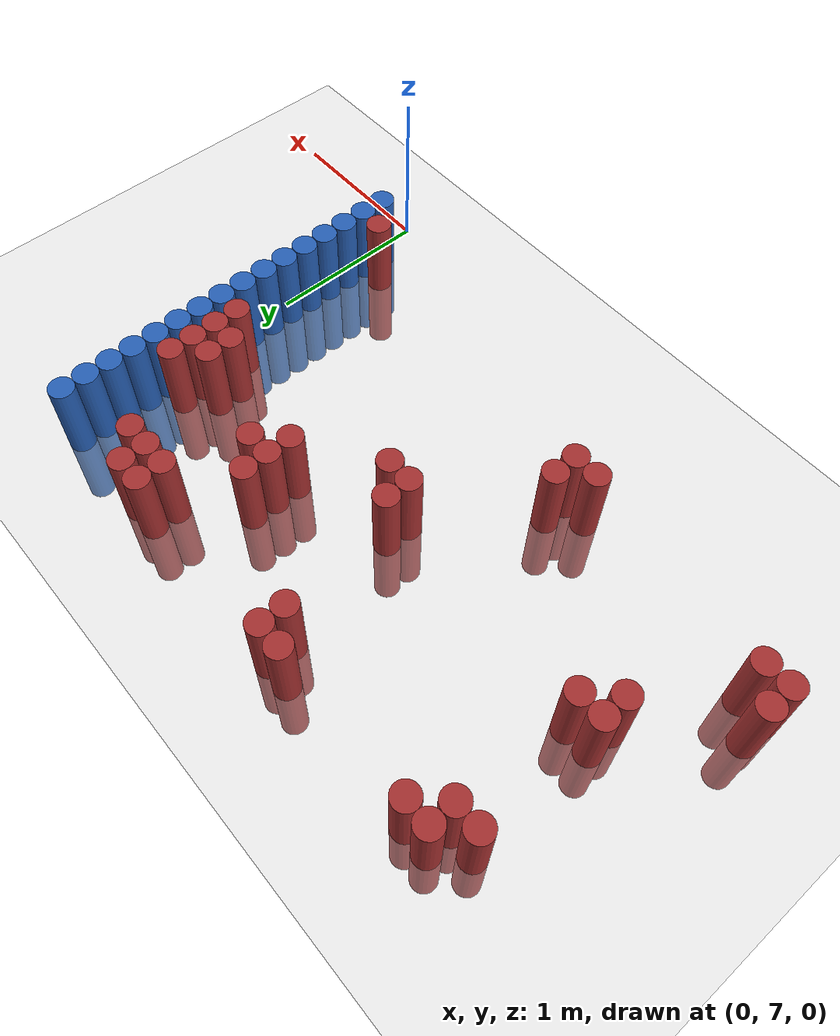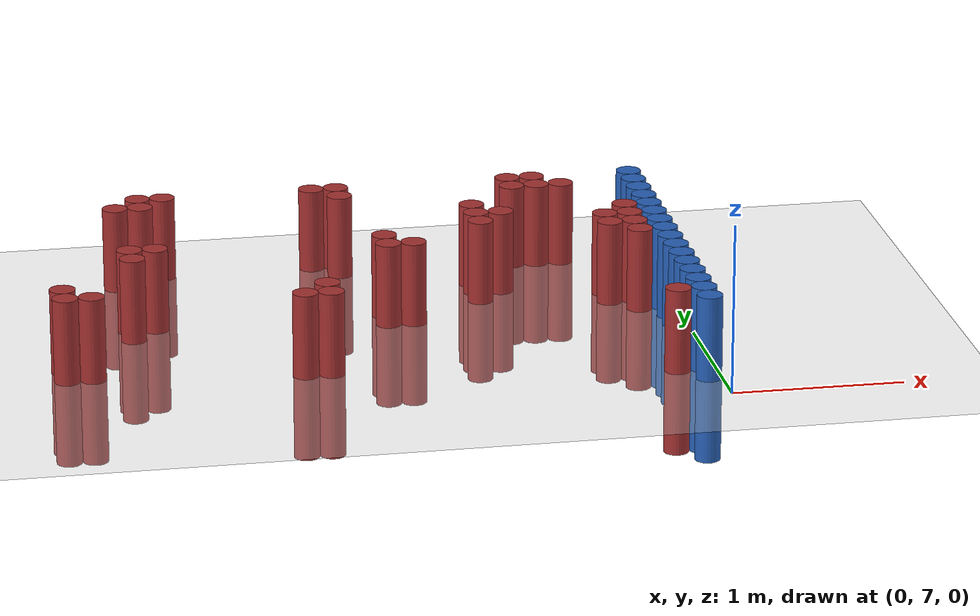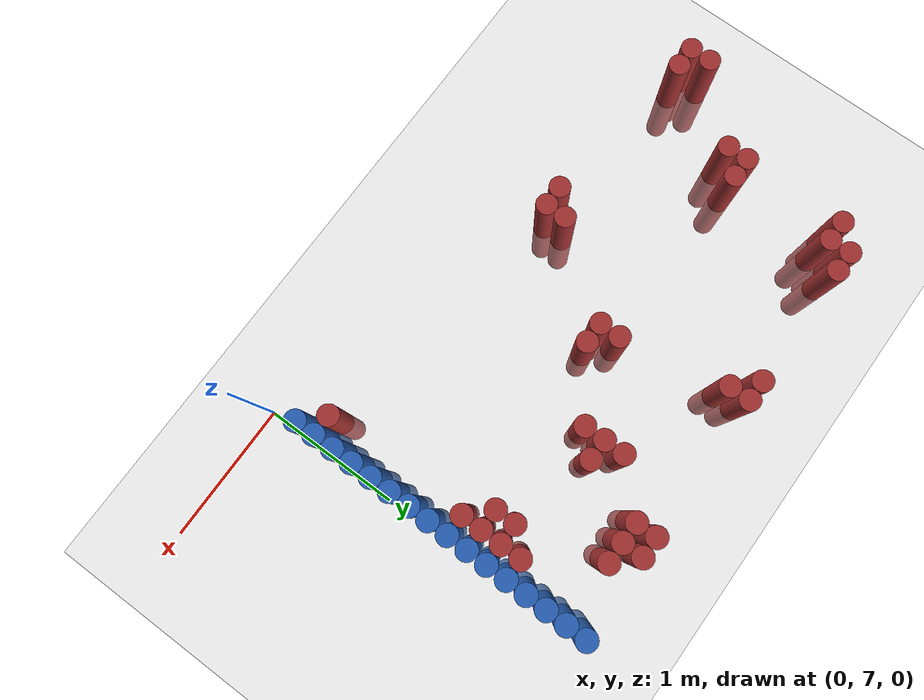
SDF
<sdf version="1.6">
 <world name="default">
  <model name="ground_plane">
   <static>1</static>
   <link name="link">
    <collision name="collision">
     <geometry><plane><normal>0 0 1</normal><size>100 100</size></plane></geometry>
     <surface><friction><ode><mu>100</mu><mu2>50</mu2></ode></friction></surface>
    </collision>
    <visual name="visual">
     <cast_shadows>0</cast_shadows>
     <geometry><plane><normal>0 0 1</normal><size>100 100</size></plane></geometry>
     <material>
      <script><uri>file://media/materials/scripts/gazebo.material</uri><name>Gazebo/Grey</name></script>
     </material>
    </visual>
   </link>
  </model>
  <model name="unit_cylinder_149">
   <static>1</static>
   <pose>-3.675000 7.875000 0.000000 0.000000 0.000000 0.000000</pose>
   <link name="link">
    <inertial>
     <mass>1</mass>
     <inertia><ixx>0.145833</ixx><ixy>0</ixy><ixz>0</ixz><iyy>0.145833</iyy><iyz>0</iyz><izz>0.125</izz></inertia>
    </inertial>
    <collision name="collision">
     <geometry><cylinder><radius>0.075000</radius><length>1</length></cylinder></geometry>
    </collision>
    <visual name="visual">
     <geometry><cylinder><radius>0.075000</radius><length>1</length></cylinder></geometry>
     <material>
      <ambient>0.648000 0.192000 0.192000 1</ambient>
      <diffuse>0.648000 0.192000 0.192000 1</diffuse>
     </material>
     <material>
      <script><name>Gazebo/Grey</name><uri>file://media/materials/scripts/gazebo.material</uri></script>
     </material>
    </visual>
   </link>
  </model>
  <model name="unit_cylinder_150">
   <static>1</static>
   <pose>-3.675000 8.025000 0.000000 0.000000 0.000000 0.000000</pose>
   <link name="link">
    <inertial>
     <mass>1</mass>
     <inertia><ixx>0.145833</ixx><ixy>0</ixy><ixz>0</ixz><iyy>0.145833</iyy><iyz>0</iyz><izz>0.125</izz></inertia>
    </inertial>
    <collision name="collision">
     <geometry><cylinder><radius>0.075000</radius><length>1</length></cylinder></geometry>
    </collision>
    <visual name="visual">
     <geometry><cylinder><radius>0.075000</radius><length>1</length></cylinder></geometry>
     <material>
      <ambient>0.648000 0.192000 0.192000 1</ambient>
      <diffuse>0.648000 0.192000 0.192000 1</diffuse>
     </material>
     <material>
      <script><name>Gazebo/Grey</name><uri>file://media/materials/scripts/gazebo.material</uri></script>
     </material>
    </visual>
   </link>
  </model>
  <model name="unit_cylinder_152">
   <static>1</static>
   <pose>-3.525000 7.875000 0.000000 0.000000 0.000000 0.000000</pose>
   <link name="link">
    <inertial>
     <mass>1</mass>
     <inertia><ixx>0.145833</ixx><ixy>0</ixy><ixz>0</ixz><iyy>0.145833</iyy><iyz>0</iyz><izz>0.125</izz></inertia>
    </inertial>
    <collision name="collision">
     <geometry><cylinder><radius>0.075000</radius><length>1</length></cylinder></geometry>
    </collision>
    <visual name="visual">
     <geometry><cylinder><radius>0.075000</radius><length>1</length></cylinder></geometry>
     <material>
      <ambient>0.648000 0.192000 0.192000 1</ambient>
      <diffuse>0.648000 0.192000 0.192000 1</diffuse>
     </material>
     <material>
      <script><name>Gazebo/Grey</name><uri>file://media/materials/scripts/gazebo.material</uri></script>
     </material>
    </visual>
   </link>
  </model>
  <model name="unit_cylinder_155">
   <static>1</static>
   <pose>-3.225000 8.475000 0.000000 0.000000 0.000000 0.000000</pose>
   <link name="link">
    <inertial>
     <mass>1</mass>
     <inertia><ixx>0.145833</ixx><ixy>0</ixy><ixz>0</ixz><iyy>0.145833</iyy><iyz>0</iyz><izz>0.125</izz></inertia>
    </inertial>
    <collision name="collision">
     <geometry><cylinder><radius>0.075000</radius><length>1</length></cylinder></geometry>
    </collision>
    <visual name="visual">
     <geometry><cylinder><radius>0.075000</radius><length>1</length></cylinder></geometry>
     <material>
      <ambient>0.648000 0.192000 0.192000 1</ambient>
      <diffuse>0.648000 0.192000 0.192000 1</diffuse>
     </material>
     <material>
      <script><name>Gazebo/Grey</name><uri>file://media/materials/scripts/gazebo.material</uri></script>
     </material>
    </visual>
   </link>
  </model>
  <model name="unit_cylinder_156">
   <static>1</static>
   <pose>-3.225000 8.625000 0.000000 0.000000 0.000000 0.000000</pose>
   <link name="link">
    <inertial>
     <mass>1</mass>
     <inertia><ixx>0.145833</ixx><ixy>0</ixy><ixz>0</ixz><iyy>0.145833</iyy><iyz>0</iyz><izz>0.125</izz></inertia>
    </inertial>
    <collision name="collision">
     <geometry><cylinder><radius>0.075000</radius><length>1</length></cylinder></geometry>
    </collision>
    <visual name="visual">
     <geometry><cylinder><radius>0.075000</radius><length>1</length></cylinder></geometry>
     <material>
      <ambient>0.648000 0.192000 0.192000 1</ambient>
      <diffuse>0.648000 0.192000 0.192000 1</diffuse>
     </material>
     <material>
      <script><name>Gazebo/Grey</name><uri>file://media/materials/scripts/gazebo.material</uri></script>
     </material>
    </visual>
   </link>
  </model>
  <model name="unit_cylinder_157">
   <static>1</static>
   <pose>-3.225000 9.375000 0.000000 0.000000 0.000000 0.000000</pose>
   <link name="link">
    <inertial>
     <mass>1</mass>
     <inertia><ixx>0.145833</ixx><ixy>0</ixy><ixz>0</ixz><iyy>0.145833</iyy><iyz>0</iyz><izz>0.125</izz></inertia>
    </inertial>
    <collision name="collision">
     <geometry><cylinder><radius>0.075000</radius><length>1</length></cylinder></geometry>
    </collision>
    <visual name="visual">
     <geometry><cylinder><radius>0.075000</radius><length>1</length></cylinder></geometry>
     <material>
      <ambient>0.648000 0.192000 0.192000 1</ambient>
      <diffuse>0.648000 0.192000 0.192000 1</diffuse>
     </material>
     <material>
      <script><name>Gazebo/Grey</name><uri>file://media/materials/scripts/gazebo.material</uri></script>
     </material>
    </visual>
   </link>
  </model>
  <model name="unit_cylinder_158">
   <static>1</static>
   <pose>-3.075000 8.625000 0.000000 0.000000 0.000000 0.000000</pose>
   <link name="link">
    <inertial>
     <mass>1</mass>
     <inertia><ixx>0.145833</ixx><ixy>0</ixy><ixz>0</ixz><iyy>0.145833</iyy><iyz>0</iyz><izz>0.125</izz></inertia>
    </inertial>
    <collision name="collision">
     <geometry><cylinder><radius>0.075000</radius><length>1</length></cylinder></geometry>
    </collision>
    <visual name="visual">
     <geometry><cylinder><radius>0.075000</radius><length>1</length></cylinder></geometry>
     <material>
      <ambient>0.648000 0.192000 0.192000 1</ambient>
      <diffuse>0.648000 0.192000 0.192000 1</diffuse>
     </material>
     <material>
      <script><name>Gazebo/Grey</name><uri>file://media/materials/scripts/gazebo.material</uri></script>
     </material>
    </visual>
   </link>
  </model>
  <model name="unit_cylinder_159">
   <static>1</static>
   <pose>-3.075000 9.375000 0.000000 0.000000 0.000000 0.000000</pose>
   <link name="link">
    <inertial>
     <mass>1</mass>
     <inertia><ixx>0.145833</ixx><ixy>0</ixy><ixz>0</ixz><iyy>0.145833</iyy><iyz>0</iyz><izz>0.125</izz></inertia>
    </inertial>
    <collision name="collision">
     <geometry><cylinder><radius>0.075000</radius><length>1</length></cylinder></geometry>
    </collision>
    <visual name="visual">
     <geometry><cylinder><radius>0.075000</radius><length>1</length></cylinder></geometry>
     <material>
      <ambient>0.648000 0.192000 0.192000 1</ambient>
      <diffuse>0.648000 0.192000 0.192000 1</diffuse>
     </material>
     <material>
      <script><name>Gazebo/Grey</name><uri>file://media/materials/scripts/gazebo.material</uri></script>
     </material>
    </visual>
   </link>
  </model>
  <model name="unit_cylinder_160">
   <static>1</static>
   <pose>-3.075000 9.525000 0.000000 0.000000 0.000000 0.000000</pose>
   <link name="link">
    <inertial>
     <mass>1</mass>
     <inertia><ixx>0.145833</ixx><ixy>0</ixy><ixz>0</ixz><iyy>0.145833</iyy><iyz>0</iyz><izz>0.125</izz></inertia>
    </inertial>
    <collision name="collision">
     <geometry><cylinder><radius>0.075000</radius><length>1</length></cylinder></geometry>
    </collision>
    <visual name="visual">
     <geometry><cylinder><radius>0.075000</radius><length>1</length></cylinder></geometry>
     <material>
      <ambient>0.648000 0.192000 0.192000 1</ambient>
      <diffuse>0.648000 0.192000 0.192000 1</diffuse>
     </material>
     <material>
      <script><name>Gazebo/Grey</name><uri>file://media/materials/scripts/gazebo.material</uri></script>
     </material>
    </visual>
   </link>
  </model>
  <model name="unit_cylinder_161">
   <static>1</static>
   <pose>-2.925000 9.525000 0.000000 0.000000 0.000000 0.000000</pose>
   <link name="link">
    <inertial>
     <mass>1</mass>
     <inertia><ixx>0.145833</ixx><ixy>0</ixy><ixz>0</ixz><iyy>0.145833</iyy><iyz>0</iyz><izz>0.125</izz></inertia>
    </inertial>
    <collision name="collision">
     <geometry><cylinder><radius>0.075000</radius><length>1</length></cylinder></geometry>
    </collision>
    <visual name="visual">
     <geometry><cylinder><radius>0.075000</radius><length>1</length></cylinder></geometry>
     <material>
      <ambient>0.648000 0.192000 0.192000 1</ambient>
      <diffuse>0.648000 0.192000 0.192000 1</diffuse>
     </material>
     <material>
      <script><name>Gazebo/Grey</name><uri>file://media/materials/scripts/gazebo.material</uri></script>
     </material>
    </visual>
   </link>
  </model>
  <model name="unit_cylinder_170">
   <static>1</static>
   <pose>-2.325000 7.725000 0.000000 0.000000 0.000000 0.000000</pose>
   <link name="link">
    <inertial>
     <mass>1</mass>
     <inertia><ixx>0.145833</ixx><ixy>0</ixy><ixz>0</ixz><iyy>0.145833</iyy><iyz>0</iyz><izz>0.125</izz></inertia>
    </inertial>
    <collision name="collision">
     <geometry><cylinder><radius>0.075000</radius><length>1</length></cylinder></geometry>
    </collision>
    <visual name="visual">
     <geometry><cylinder><radius>0.075000</radius><length>1</length></cylinder></geometry>
     <material>
      <ambient>0.648000 0.192000 0.192000 1</ambient>
      <diffuse>0.648000 0.192000 0.192000 1</diffuse>
     </material>
     <material>
      <script><name>Gazebo/Grey</name><uri>file://media/materials/scripts/gazebo.material</uri></script>
     </material>
    </visual>
   </link>
  </model>
  <model name="unit_cylinder_171">
   <static>1</static>
   <pose>-2.175000 7.725000 0.000000 0.000000 0.000000 0.000000</pose>
   <link name="link">
    <inertial>
     <mass>1</mass>
     <inertia><ixx>0.145833</ixx><ixy>0</ixy><ixz>0</ixz><iyy>0.145833</iyy><iyz>0</iyz><izz>0.125</izz></inertia>
    </inertial>
    <collision name="collision">
     <geometry><cylinder><radius>0.075000</radius><length>1</length></cylinder></geometry>
    </collision>
    <visual name="visual">
     <geometry><cylinder><radius>0.075000</radius><length>1</length></cylinder></geometry>
     <material>
      <ambient>0.648000 0.192000 0.192000 1</ambient>
      <diffuse>0.648000 0.192000 0.192000 1</diffuse>
     </material>
     <material>
      <script><name>Gazebo/Grey</name><uri>file://media/materials/scripts/gazebo.material</uri></script>
     </material>
    </visual>
   </link>
  </model>
  <model name="unit_cylinder_172">
   <static>1</static>
   <pose>-2.175000 7.875000 0.000000 0.000000 0.000000 0.000000</pose>
   <link name="link">
    <inertial>
     <mass>1</mass>
     <inertia><ixx>0.145833</ixx><ixy>0</ixy><ixz>0</ixz><iyy>0.145833</iyy><iyz>0</iyz><izz>0.125</izz></inertia>
    </inertial>
    <collision name="collision">
     <geometry><cylinder><radius>0.075000</radius><length>1</length></cylinder></geometry>
    </collision>
    <visual name="visual">
     <geometry><cylinder><radius>0.075000</radius><length>1</length></cylinder></geometry>
     <material>
      <ambient>0.648000 0.192000 0.192000 1</ambient>
      <diffuse>0.648000 0.192000 0.192000 1</diffuse>
     </material>
     <material>
      <script><name>Gazebo/Grey</name><uri>file://media/materials/scripts/gazebo.material</uri></script>
     </material>
    </visual>
   </link>
  </model>
  <model name="unit_cylinder_173">
   <static>1</static>
   <pose>-2.025000 9.525000 0.000000 0.000000 0.000000 0.000000</pose>
   <link name="link">
    <inertial>
     <mass>1</mass>
     <inertia><ixx>0.145833</ixx><ixy>0</ixy><ixz>0</ixz><iyy>0.145833</iyy><iyz>0</iyz><izz>0.125</izz></inertia>
    </inertial>
    <collision name="collision">
     <geometry><cylinder><radius>0.075000</radius><length>1</length></cylinder></geometry>
    </collision>
    <visual name="visual">
     <geometry><cylinder><radius>0.075000</radius><length>1</length></cylinder></geometry>
     <material>
      <ambient>0.648000 0.192000 0.192000 1</ambient>
      <diffuse>0.648000 0.192000 0.192000 1</diffuse>
     </material>
     <material>
      <script><name>Gazebo/Grey</name><uri>file://media/materials/scripts/gazebo.material</uri></script>
     </material>
    </visual>
   </link>
  </model>
  <model name="unit_cylinder_175">
   <static>1</static>
   <pose>-1.875000 9.375000 0.000000 0.000000 0.000000 0.000000</pose>
   <link name="link">
    <inertial>
     <mass>1</mass>
     <inertia><ixx>0.145833</ixx><ixy>0</ixy><ixz>0</ixz><iyy>0.145833</iyy><iyz>0</iyz><izz>0.125</izz></inertia>
    </inertial>
    <collision name="collision">
     <geometry><cylinder><radius>0.075000</radius><length>1</length></cylinder></geometry>
    </collision>
    <visual name="visual">
     <geometry><cylinder><radius>0.075000</radius><length>1</length></cylinder></geometry>
     <material>
      <ambient>0.648000 0.192000 0.192000 1</ambient>
      <diffuse>0.648000 0.192000 0.192000 1</diffuse>
     </material>
     <material>
      <script><name>Gazebo/Grey</name><uri>file://media/materials/scripts/gazebo.material</uri></script>
     </material>
    </visual>
   </link>
  </model>
  <model name="unit_cylinder_176">
   <static>1</static>
   <pose>-1.875000 9.525000 0.000000 0.000000 0.000000 0.000000</pose>
   <link name="link">
    <inertial>
     <mass>1</mass>
     <inertia><ixx>0.145833</ixx><ixy>0</ixy><ixz>0</ixz><iyy>0.145833</iyy><iyz>0</iyz><izz>0.125</izz></inertia>
    </inertial>
    <collision name="collision">
     <geometry><cylinder><radius>0.075000</radius><length>1</length></cylinder></geometry>
    </collision>
    <visual name="visual">
     <geometry><cylinder><radius>0.075000</radius><length>1</length></cylinder></geometry>
     <material>
      <ambient>0.648000 0.192000 0.192000 1</ambient>
      <diffuse>0.648000 0.192000 0.192000 1</diffuse>
     </material>
     <material>
      <script><name>Gazebo/Grey</name><uri>file://media/materials/scripts/gazebo.material</uri></script>
     </material>
    </visual>
   </link>
  </model>
  <model name="unit_cylinder_180">
   <static>1</static>
   <pose>-1.725000 8.475000 0.000000 0.000000 0.000000 0.000000</pose>
   <link name="link">
    <inertial>
     <mass>1</mass>
     <inertia><ixx>0.145833</ixx><ixy>0</ixy><ixz>0</ixz><iyy>0.145833</iyy><iyz>0</iyz><izz>0.125</izz></inertia>
    </inertial>
    <collision name="collision">
     <geometry><cylinder><radius>0.075000</radius><length>1</length></cylinder></geometry>
    </collision>
    <visual name="visual">
     <geometry><cylinder><radius>0.075000</radius><length>1</length></cylinder></geometry>
     <material>
      <ambient>0.648000 0.192000 0.192000 1</ambient>
      <diffuse>0.648000 0.192000 0.192000 1</diffuse>
     </material>
     <material>
      <script><name>Gazebo/Grey</name><uri>file://media/materials/scripts/gazebo.material</uri></script>
     </material>
    </visual>
   </link>
  </model>
  <model name="unit_cylinder_181">
   <static>1</static>
   <pose>-1.725000 8.625000 0.000000 0.000000 0.000000 0.000000</pose>
   <link name="link">
    <inertial>
     <mass>1</mass>
     <inertia><ixx>0.145833</ixx><ixy>0</ixy><ixz>0</ixz><iyy>0.145833</iyy><iyz>0</iyz><izz>0.125</izz></inertia>
    </inertial>
    <collision name="collision">
     <geometry><cylinder><radius>0.075000</radius><length>1</length></cylinder></geometry>
    </collision>
    <visual name="visual">
     <geometry><cylinder><radius>0.075000</radius><length>1</length></cylinder></geometry>
     <material>
      <ambient>0.648000 0.192000 0.192000 1</ambient>
      <diffuse>0.648000 0.192000 0.192000 1</diffuse>
     </material>
     <material>
      <script><name>Gazebo/Grey</name><uri>file://media/materials/scripts/gazebo.material</uri></script>
     </material>
    </visual>
   </link>
  </model>
  <model name="unit_cylinder_184">
   <static>1</static>
   <pose>-1.575000 8.475000 0.000000 0.000000 0.000000 0.000000</pose>
   <link name="link">
    <inertial>
     <mass>1</mass>
     <inertia><ixx>0.145833</ixx><ixy>0</ixy><ixz>0</ixz><iyy>0.145833</iyy><iyz>0</iyz><izz>0.125</izz></inertia>
    </inertial>
    <collision name="collision">
     <geometry><cylinder><radius>0.075000</radius><length>1</length></cylinder></geometry>
    </collision>
    <visual name="visual">
     <geometry><cylinder><radius>0.075000</radius><length>1</length></cylinder></geometry>
     <material>
      <ambient>0.648000 0.192000 0.192000 1</ambient>
      <diffuse>0.648000 0.192000 0.192000 1</diffuse>
     </material>
     <material>
      <script><name>Gazebo/Grey</name><uri>file://media/materials/scripts/gazebo.material</uri></script>
     </material>
    </visual>
   </link>
  </model>
  <model name="unit_cylinder_201">
   <static>1</static>
   <pose>-1.125000 8.775000 0.000000 0.000000 0.000000 0.000000</pose>
   <link name="link">
    <inertial>
     <mass>1</mass>
     <inertia><ixx>0.145833</ixx><ixy>0</ixy><ixz>0</ixz><iyy>0.145833</iyy><iyz>0</iyz><izz>0.125</izz></inertia>
    </inertial>
    <collision name="collision">
     <geometry><cylinder><radius>0.075000</radius><length>1</length></cylinder></geometry>
    </collision>
    <visual name="visual">
     <geometry><cylinder><radius>0.075000</radius><length>1</length></cylinder></geometry>
     <material>
      <ambient>0.648000 0.192000 0.192000 1</ambient>
      <diffuse>0.648000 0.192000 0.192000 1</diffuse>
     </material>
     <material>
      <script><name>Gazebo/Grey</name><uri>file://media/materials/scripts/gazebo.material</uri></script>
     </material>
    </visual>
   </link>
  </model>
  <model name="unit_cylinder_202">
   <static>1</static>
   <pose>-1.125000 8.925000 0.000000 0.000000 0.000000 0.000000</pose>
   <link name="link">
    <inertial>
     <mass>1</mass>
     <inertia><ixx>0.145833</ixx><ixy>0</ixy><ixz>0</ixz><iyy>0.145833</iyy><iyz>0</iyz><izz>0.125</izz></inertia>
    </inertial>
    <collision name="collision">
     <geometry><cylinder><radius>0.075000</radius><length>1</length></cylinder></geometry>
    </collision>
    <visual name="visual">
     <geometry><cylinder><radius>0.075000</radius><length>1</length></cylinder></geometry>
     <material>
      <ambient>0.648000 0.192000 0.192000 1</ambient>
      <diffuse>0.648000 0.192000 0.192000 1</diffuse>
     </material>
     <material>
      <script><name>Gazebo/Grey</name><uri>file://media/materials/scripts/gazebo.material</uri></script>
     </material>
    </visual>
   </link>
  </model>
  <model name="unit_cylinder_203">
   <static>1</static>
   <pose>-1.125000 9.075000 0.000000 0.000000 0.000000 0.000000</pose>
   <link name="link">
    <inertial>
     <mass>1</mass>
     <inertia><ixx>0.145833</ixx><ixy>0</ixy><ixz>0</ixz><iyy>0.145833</iyy><iyz>0</iyz><izz>0.125</izz></inertia>
    </inertial>
    <collision name="collision">
     <geometry><cylinder><radius>0.075000</radius><length>1</length></cylinder></geometry>
    </collision>
    <visual name="visual">
     <geometry><cylinder><radius>0.075000</radius><length>1</length></cylinder></geometry>
     <material>
      <ambient>0.648000 0.192000 0.192000 1</ambient>
      <diffuse>0.648000 0.192000 0.192000 1</diffuse>
     </material>
     <material>
      <script><name>Gazebo/Grey</name><uri>file://media/materials/scripts/gazebo.material</uri></script>
     </material>
    </visual>
   </link>
  </model>
  <model name="unit_cylinder_206">
   <static>1</static>
   <pose>-0.975000 8.925000 0.000000 0.000000 0.000000 0.000000</pose>
   <link name="link">
    <inertial>
     <mass>1</mass>
     <inertia><ixx>0.145833</ixx><ixy>0</ixy><ixz>0</ixz><iyy>0.145833</iyy><iyz>0</iyz><izz>0.125</izz></inertia>
    </inertial>
    <collision name="collision">
     <geometry><cylinder><radius>0.075000</radius><length>1</length></cylinder></geometry>
    </collision>
    <visual name="visual">
     <geometry><cylinder><radius>0.075000</radius><length>1</length></cylinder></geometry>
     <material>
      <ambient>0.648000 0.192000 0.192000 1</ambient>
      <diffuse>0.648000 0.192000 0.192000 1</diffuse>
     </material>
     <material>
      <script><name>Gazebo/Grey</name><uri>file://media/materials/scripts/gazebo.material</uri></script>
     </material>
    </visual>
   </link>
  </model>
  <model name="unit_cylinder_207">
   <static>1</static>
   <pose>-0.825000 9.375000 0.000000 0.000000 0.000000 0.000000</pose>
   <link name="link">
    <inertial>
     <mass>1</mass>
     <inertia><ixx>0.145833</ixx><ixy>0</ixy><ixz>0</ixz><iyy>0.145833</iyy><iyz>0</iyz><izz>0.125</izz></inertia>
    </inertial>
    <collision name="collision">
     <geometry><cylinder><radius>0.075000</radius><length>1</length></cylinder></geometry>
    </collision>
    <visual name="visual">
     <geometry><cylinder><radius>0.075000</radius><length>1</length></cylinder></geometry>
     <material>
      <ambient>0.648000 0.192000 0.192000 1</ambient>
      <diffuse>0.648000 0.192000 0.192000 1</diffuse>
     </material>
     <material>
      <script><name>Gazebo/Grey</name><uri>file://media/materials/scripts/gazebo.material</uri></script>
     </material>
    </visual>
   </link>
  </model>
  <model name="unit_cylinder_208">
   <static>1</static>
   <pose>-0.825000 9.525000 0.000000 0.000000 0.000000 0.000000</pose>
   <link name="link">
    <inertial>
     <mass>1</mass>
     <inertia><ixx>0.145833</ixx><ixy>0</ixy><ixz>0</ixz><iyy>0.145833</iyy><iyz>0</iyz><izz>0.125</izz></inertia>
    </inertial>
    <collision name="collision">
     <geometry><cylinder><radius>0.075000</radius><length>1</length></cylinder></geometry>
    </collision>
    <visual name="visual">
     <geometry><cylinder><radius>0.075000</radius><length>1</length></cylinder></geometry>
     <material>
      <ambient>0.648000 0.192000 0.192000 1</ambient>
      <diffuse>0.648000 0.192000 0.192000 1</diffuse>
     </material>
     <material>
      <script><name>Gazebo/Grey</name><uri>file://media/materials/scripts/gazebo.material</uri></script>
     </material>
    </visual>
   </link>
  </model>
  <model name="unit_cylinder_209">
   <static>1</static>
   <pose>-0.675000 9.375000 0.000000 0.000000 0.000000 0.000000</pose>
   <link name="link">
    <inertial>
     <mass>1</mass>
     <inertia><ixx>0.145833</ixx><ixy>0</ixy><ixz>0</ixz><iyy>0.145833</iyy><iyz>0</iyz><izz>0.125</izz></inertia>
    </inertial>
    <collision name="collision">
     <geometry><cylinder><radius>0.075000</radius><length>1</length></cylinder></geometry>
    </collision>
    <visual name="visual">
     <geometry><cylinder><radius>0.075000</radius><length>1</length></cylinder></geometry>
     <material>
      <ambient>0.648000 0.192000 0.192000 1</ambient>
      <diffuse>0.648000 0.192000 0.192000 1</diffuse>
     </material>
     <material>
      <script><name>Gazebo/Grey</name><uri>file://media/materials/scripts/gazebo.material</uri></script>
     </material>
    </visual>
   </link>
  </model>
  <model name="unit_cylinder_210">
   <static>1</static>
   <pose>-0.675000 9.525000 0.000000 0.000000 0.000000 0.000000</pose>
   <link name="link">
    <inertial>
     <mass>1</mass>
     <inertia><ixx>0.145833</ixx><ixy>0</ixy><ixz>0</ixz><iyy>0.145833</iyy><iyz>0</iyz><izz>0.125</izz></inertia>
    </inertial>
    <collision name="collision">
     <geometry><cylinder><radius>0.075000</radius><length>1</length></cylinder></geometry>
    </collision>
    <visual name="visual">
     <geometry><cylinder><radius>0.075000</radius><length>1</length></cylinder></geometry>
     <material>
      <ambient>0.648000 0.192000 0.192000 1</ambient>
      <diffuse>0.648000 0.192000 0.192000 1</diffuse>
     </material>
     <material>
      <script><name>Gazebo/Grey</name><uri>file://media/materials/scripts/gazebo.material</uri></script>
     </material>
    </visual>
   </link>
  </model>
  <model name="unit_cylinder_211">
   <static>1</static>
   <pose>-0.525000 9.375000 0.000000 0.000000 0.000000 0.000000</pose>
   <link name="link">
    <inertial>
     <mass>1</mass>
     <inertia><ixx>0.145833</ixx><ixy>0</ixy><ixz>0</ixz><iyy>0.145833</iyy><iyz>0</iyz><izz>0.125</izz></inertia>
    </inertial>
    <collision name="collision">
     <geometry><cylinder><radius>0.075000</radius><length>1</length></cylinder></geometry>
    </collision>
    <visual name="visual">
     <geometry><cylinder><radius>0.075000</radius><length>1</length></cylinder></geometry>
     <material>
      <ambient>0.648000 0.192000 0.192000 1</ambient>
      <diffuse>0.648000 0.192000 0.192000 1</diffuse>
     </material>
     <material>
      <script><name>Gazebo/Grey</name><uri>file://media/materials/scripts/gazebo.material</uri></script>
     </material>
    </visual>
   </link>
  </model>
  <model name="unit_cylinder_214">
   <static>1</static>
   <pose>-0.375000 8.625000 0.000000 0.000000 0.000000 0.000000</pose>
   <link name="link">
    <inertial>
     <mass>1</mass>
     <inertia><ixx>0.145833</ixx><ixy>0</ixy><ixz>0</ixz><iyy>0.145833</iyy><iyz>0</iyz><izz>0.125</izz></inertia>
    </inertial>
    <collision name="collision">
     <geometry><cylinder><radius>0.075000</radius><length>1</length></cylinder></geometry>
    </collision>
    <visual name="visual">
     <geometry><cylinder><radius>0.075000</radius><length>1</length></cylinder></geometry>
     <material>
      <ambient>0.648000 0.192000 0.192000 1</ambient>
      <diffuse>0.648000 0.192000 0.192000 1</diffuse>
     </material>
     <material>
      <script><name>Gazebo/Grey</name><uri>file://media/materials/scripts/gazebo.material</uri></script>
     </material>
    </visual>
   </link>
  </model>
  <model name="unit_cylinder_215">
   <static>1</static>
   <pose>-0.375000 8.775000 0.000000 0.000000 0.000000 0.000000</pose>
   <link name="link">
    <inertial>
     <mass>1</mass>
     <inertia><ixx>0.145833</ixx><ixy>0</ixy><ixz>0</ixz><iyy>0.145833</iyy><iyz>0</iyz><izz>0.125</izz></inertia>
    </inertial>
    <collision name="collision">
     <geometry><cylinder><radius>0.075000</radius><length>1</length></cylinder></geometry>
    </collision>
    <visual name="visual">
     <geometry><cylinder><radius>0.075000</radius><length>1</length></cylinder></geometry>
     <material>
      <ambient>0.648000 0.192000 0.192000 1</ambient>
      <diffuse>0.648000 0.192000 0.192000 1</diffuse>
     </material>
     <material>
      <script><name>Gazebo/Grey</name><uri>file://media/materials/scripts/gazebo.material</uri></script>
     </material>
    </visual>
   </link>
  </model>
  <model name="unit_cylinder_221">
   <static>1</static>
   <pose>-0.225000 7.425000 0.000000 0.000000 0.000000 0.000000</pose>
   <link name="link">
    <inertial>
     <mass>1</mass>
     <inertia><ixx>0.145833</ixx><ixy>0</ixy><ixz>0</ixz><iyy>0.145833</iyy><iyz>0</iyz><izz>0.125</izz></inertia>
    </inertial>
    <collision name="collision">
     <geometry><cylinder><radius>0.075000</radius><length>1</length></cylinder></geometry>
    </collision>
    <visual name="visual">
     <geometry><cylinder><radius>0.075000</radius><length>1</length></cylinder></geometry>
     <material>
      <ambient>0.648000 0.192000 0.192000 1</ambient>
      <diffuse>0.648000 0.192000 0.192000 1</diffuse>
     </material>
     <material>
      <script><name>Gazebo/Grey</name><uri>file://media/materials/scripts/gazebo.material</uri></script>
     </material>
    </visual>
   </link>
  </model>
  <model name="unit_cylinder_222">
   <static>1</static>
   <pose>-0.225000 8.475000 0.000000 0.000000 0.000000 0.000000</pose>
   <link name="link">
    <inertial>
     <mass>1</mass>
     <inertia><ixx>0.145833</ixx><ixy>0</ixy><ixz>0</ixz><iyy>0.145833</iyy><iyz>0</iyz><izz>0.125</izz></inertia>
    </inertial>
    <collision name="collision">
     <geometry><cylinder><radius>0.075000</radius><length>1</length></cylinder></geometry>
    </collision>
    <visual name="visual">
     <geometry><cylinder><radius>0.075000</radius><length>1</length></cylinder></geometry>
     <material>
      <ambient>0.648000 0.192000 0.192000 1</ambient>
      <diffuse>0.648000 0.192000 0.192000 1</diffuse>
     </material>
     <material>
      <script><name>Gazebo/Grey</name><uri>file://media/materials/scripts/gazebo.material</uri></script>
     </material>
    </visual>
   </link>
  </model>
  <model name="unit_cylinder_223">
   <static>1</static>
   <pose>-0.225000 8.625000 0.000000 0.000000 0.000000 0.000000</pose>
   <link name="link">
    <inertial>
     <mass>1</mass>
     <inertia><ixx>0.145833</ixx><ixy>0</ixy><ixz>0</ixz><iyy>0.145833</iyy><iyz>0</iyz><izz>0.125</izz></inertia>
    </inertial>
    <collision name="collision">
     <geometry><cylinder><radius>0.075000</radius><length>1</length></cylinder></geometry>
    </collision>
    <visual name="visual">
     <geometry><cylinder><radius>0.075000</radius><length>1</length></cylinder></geometry>
     <material>
      <ambient>0.648000 0.192000 0.192000 1</ambient>
      <diffuse>0.648000 0.192000 0.192000 1</diffuse>
     </material>
     <material>
      <script><name>Gazebo/Grey</name><uri>file://media/materials/scripts/gazebo.material</uri></script>
     </material>
    </visual>
   </link>
  </model>
  <model name="unit_cylinder_224">
   <static>1</static>
   <pose>-0.225000 8.775000 0.000000 0.000000 0.000000 0.000000</pose>
   <link name="link">
    <inertial>
     <mass>1</mass>
     <inertia><ixx>0.145833</ixx><ixy>0</ixy><ixz>0</ixz><iyy>0.145833</iyy><iyz>0</iyz><izz>0.125</izz></inertia>
    </inertial>
    <collision name="collision">
     <geometry><cylinder><radius>0.075000</radius><length>1</length></cylinder></geometry>
    </collision>
    <visual name="visual">
     <geometry><cylinder><radius>0.075000</radius><length>1</length></cylinder></geometry>
     <material>
      <ambient>0.648000 0.192000 0.192000 1</ambient>
      <diffuse>0.648000 0.192000 0.192000 1</diffuse>
     </material>
     <material>
      <script><name>Gazebo/Grey</name><uri>file://media/materials/scripts/gazebo.material</uri></script>
     </material>
    </visual>
   </link>
  </model>
  <model name="unit_cylinder_225">
   <static>1</static>
   <pose>-0.225000 8.925000 0.000000 0.000000 0.000000 0.000000</pose>
   <link name="link">
    <inertial>
     <mass>1</mass>
     <inertia><ixx>0.145833</ixx><ixy>0</ixy><ixz>0</ixz><iyy>0.145833</iyy><iyz>0</iyz><izz>0.125</izz></inertia>
    </inertial>
    <collision name="collision">
     <geometry><cylinder><radius>0.075000</radius><length>1</length></cylinder></geometry>
    </collision>
    <visual name="visual">
     <geometry><cylinder><radius>0.075000</radius><length>1</length></cylinder></geometry>
     <material>
      <ambient>0.648000 0.192000 0.192000 1</ambient>
      <diffuse>0.648000 0.192000 0.192000 1</diffuse>
     </material>
     <material>
      <script><name>Gazebo/Grey</name><uri>file://media/materials/scripts/gazebo.material</uri></script>
     </material>
    </visual>
   </link>
  </model>
  <model name="unit_cylinder_240">
   <static>1</static>
   <pose>-0.075000 7.275000 0.000000 0.000000 0.000000 0.000000</pose>
   <link name="link">
    <inertial>
     <mass>1</mass>
     <inertia><ixx>0.145833</ixx><ixy>0</ixy><ixz>0</ixz><iyy>0.145833</iyy><iyz>0</iyz><izz>0.125</izz></inertia>
    </inertial>
    <collision name="collision">
     <geometry><cylinder><radius>0.075000</radius><length>1</length></cylinder></geometry>
    </collision>
    <visual name="visual">
     <geometry><cylinder><radius>0.075000</radius><length>1</length></cylinder></geometry>
     <material>
      <ambient>0.152000 0.379000 0.720000 1</ambient>
      <diffuse>0.152000 0.379000 0.720000 1</diffuse>
     </material>
     <material>
      <script><name>Gazebo/Grey</name><uri>file://media/materials/scripts/gazebo.material</uri></script>
     </material>
    </visual>
   </link>
  </model>
  <model name="unit_cylinder_241">
   <static>1</static>
   <pose>-0.075000 7.425000 0.000000 0.000000 0.000000 0.000000</pose>
   <link name="link">
    <inertial>
     <mass>1</mass>
     <inertia><ixx>0.145833</ixx><ixy>0</ixy><ixz>0</ixz><iyy>0.145833</iyy><iyz>0</iyz><izz>0.125</izz></inertia>
    </inertial>
    <collision name="collision">
     <geometry><cylinder><radius>0.075000</radius><length>1</length></cylinder></geometry>
    </collision>
    <visual name="visual">
     <geometry><cylinder><radius>0.075000</radius><length>1</length></cylinder></geometry>
     <material>
      <ambient>0.152000 0.379000 0.720000 1</ambient>
      <diffuse>0.152000 0.379000 0.720000 1</diffuse>
     </material>
     <material>
      <script><name>Gazebo/Grey</name><uri>file://media/materials/scripts/gazebo.material</uri></script>
     </material>
    </visual>
   </link>
  </model>
  <model name="unit_cylinder_242">
   <static>1</static>
   <pose>-0.075000 7.575000 0.000000 0.000000 0.000000 0.000000</pose>
   <link name="link">
    <inertial>
     <mass>1</mass>
     <inertia><ixx>0.145833</ixx><ixy>0</ixy><ixz>0</ixz><iyy>0.145833</iyy><iyz>0</iyz><izz>0.125</izz></inertia>
    </inertial>
    <collision name="collision">
     <geometry><cylinder><radius>0.075000</radius><length>1</length></cylinder></geometry>
    </collision>
    <visual name="visual">
     <geometry><cylinder><radius>0.075000</radius><length>1</length></cylinder></geometry>
     <material>
      <ambient>0.152000 0.379000 0.720000 1</ambient>
      <diffuse>0.152000 0.379000 0.720000 1</diffuse>
     </material>
     <material>
      <script><name>Gazebo/Grey</name><uri>file://media/materials/scripts/gazebo.material</uri></script>
     </material>
    </visual>
   </link>
  </model>
  <model name="unit_cylinder_243">
   <static>1</static>
   <pose>-0.075000 7.725000 0.000000 0.000000 0.000000 0.000000</pose>
   <link name="link">
    <inertial>
     <mass>1</mass>
     <inertia><ixx>0.145833</ixx><ixy>0</ixy><ixz>0</ixz><iyy>0.145833</iyy><iyz>0</iyz><izz>0.125</izz></inertia>
    </inertial>
    <collision name="collision">
     <geometry><cylinder><radius>0.075000</radius><length>1</length></cylinder></geometry>
    </collision>
    <visual name="visual">
     <geometry><cylinder><radius>0.075000</radius><length>1</length></cylinder></geometry>
     <material>
      <ambient>0.152000 0.379000 0.720000 1</ambient>
      <diffuse>0.152000 0.379000 0.720000 1</diffuse>
     </material>
     <material>
      <script><name>Gazebo/Grey</name><uri>file://media/materials/scripts/gazebo.material</uri></script>
     </material>
    </visual>
   </link>
  </model>
  <model name="unit_cylinder_244">
   <static>1</static>
   <pose>-0.075000 7.875000 0.000000 0.000000 0.000000 0.000000</pose>
   <link name="link">
    <inertial>
     <mass>1</mass>
     <inertia><ixx>0.145833</ixx><ixy>0</ixy><ixz>0</ixz><iyy>0.145833</iyy><iyz>0</iyz><izz>0.125</izz></inertia>
    </inertial>
    <collision name="collision">
     <geometry><cylinder><radius>0.075000</radius><length>1</length></cylinder></geometry>
    </collision>
    <visual name="visual">
     <geometry><cylinder><radius>0.075000</radius><length>1</length></cylinder></geometry>
     <material>
      <ambient>0.152000 0.379000 0.720000 1</ambient>
      <diffuse>0.152000 0.379000 0.720000 1</diffuse>
     </material>
     <material>
      <script><name>Gazebo/Grey</name><uri>file://media/materials/scripts/gazebo.material</uri></script>
     </material>
    </visual>
   </link>
  </model>
  <model name="unit_cylinder_245">
   <static>1</static>
   <pose>-0.075000 8.025000 0.000000 0.000000 0.000000 0.000000</pose>
   <link name="link">
    <inertial>
     <mass>1</mass>
     <inertia><ixx>0.145833</ixx><ixy>0</ixy><ixz>0</ixz><iyy>0.145833</iyy><iyz>0</iyz><izz>0.125</izz></inertia>
    </inertial>
    <collision name="collision">
     <geometry><cylinder><radius>0.075000</radius><length>1</length></cylinder></geometry>
    </collision>
    <visual name="visual">
     <geometry><cylinder><radius>0.075000</radius><length>1</length></cylinder></geometry>
     <material>
      <ambient>0.152000 0.379000 0.720000 1</ambient>
      <diffuse>0.152000 0.379000 0.720000 1</diffuse>
     </material>
     <material>
      <script><name>Gazebo/Grey</name><uri>file://media/materials/scripts/gazebo.material</uri></script>
     </material>
    </visual>
   </link>
  </model>
  <model name="unit_cylinder_246">
   <static>1</static>
   <pose>-0.075000 8.175000 0.000000 0.000000 0.000000 0.000000</pose>
   <link name="link">
    <inertial>
     <mass>1</mass>
     <inertia><ixx>0.145833</ixx><ixy>0</ixy><ixz>0</ixz><iyy>0.145833</iyy><iyz>0</iyz><izz>0.125</izz></inertia>
    </inertial>
    <collision name="collision">
     <geometry><cylinder><radius>0.075000</radius><length>1</length></cylinder></geometry>
    </collision>
    <visual name="visual">
     <geometry><cylinder><radius>0.075000</radius><length>1</length></cylinder></geometry>
     <material>
      <ambient>0.152000 0.379000 0.720000 1</ambient>
      <diffuse>0.152000 0.379000 0.720000 1</diffuse>
     </material>
     <material>
      <script><name>Gazebo/Grey</name><uri>file://media/materials/scripts/gazebo.material</uri></script>
     </material>
    </visual>
   </link>
  </model>
  <model name="unit_cylinder_247">
   <static>1</static>
   <pose>-0.075000 8.325000 0.000000 0.000000 0.000000 0.000000</pose>
   <link name="link">
    <inertial>
     <mass>1</mass>
     <inertia><ixx>0.145833</ixx><ixy>0</ixy><ixz>0</ixz><iyy>0.145833</iyy><iyz>0</iyz><izz>0.125</izz></inertia>
    </inertial>
    <collision name="collision">
     <geometry><cylinder><radius>0.075000</radius><length>1</length></cylinder></geometry>
    </collision>
    <visual name="visual">
     <geometry><cylinder><radius>0.075000</radius><length>1</length></cylinder></geometry>
     <material>
      <ambient>0.152000 0.379000 0.720000 1</ambient>
      <diffuse>0.152000 0.379000 0.720000 1</diffuse>
     </material>
     <material>
      <script><name>Gazebo/Grey</name><uri>file://media/materials/scripts/gazebo.material</uri></script>
     </material>
    </visual>
   </link>
  </model>
  <model name="unit_cylinder_248">
   <static>1</static>
   <pose>-0.075000 8.475000 0.000000 0.000000 0.000000 0.000000</pose>
   <link name="link">
    <inertial>
     <mass>1</mass>
     <inertia><ixx>0.145833</ixx><ixy>0</ixy><ixz>0</ixz><iyy>0.145833</iyy><iyz>0</iyz><izz>0.125</izz></inertia>
    </inertial>
    <collision name="collision">
     <geometry><cylinder><radius>0.075000</radius><length>1</length></cylinder></geometry>
    </collision>
    <visual name="visual">
     <geometry><cylinder><radius>0.075000</radius><length>1</length></cylinder></geometry>
     <material>
      <ambient>0.152000 0.379000 0.720000 1</ambient>
      <diffuse>0.152000 0.379000 0.720000 1</diffuse>
     </material>
     <material>
      <script><name>Gazebo/Grey</name><uri>file://media/materials/scripts/gazebo.material</uri></script>
     </material>
    </visual>
   </link>
  </model>
  <model name="unit_cylinder_249">
   <static>1</static>
   <pose>-0.075000 8.625000 0.000000 0.000000 0.000000 0.000000</pose>
   <link name="link">
    <inertial>
     <mass>1</mass>
     <inertia><ixx>0.145833</ixx><ixy>0</ixy><ixz>0</ixz><iyy>0.145833</iyy><iyz>0</iyz><izz>0.125</izz></inertia>
    </inertial>
    <collision name="collision">
     <geometry><cylinder><radius>0.075000</radius><length>1</length></cylinder></geometry>
    </collision>
    <visual name="visual">
     <geometry><cylinder><radius>0.075000</radius><length>1</length></cylinder></geometry>
     <material>
      <ambient>0.152000 0.379000 0.720000 1</ambient>
      <diffuse>0.152000 0.379000 0.720000 1</diffuse>
     </material>
     <material>
      <script><name>Gazebo/Grey</name><uri>file://media/materials/scripts/gazebo.material</uri></script>
     </material>
    </visual>
   </link>
  </model>
  <model name="unit_cylinder_250">
   <static>1</static>
   <pose>-0.075000 8.775000 0.000000 0.000000 0.000000 0.000000</pose>
   <link name="link">
    <inertial>
     <mass>1</mass>
     <inertia><ixx>0.145833</ixx><ixy>0</ixy><ixz>0</ixz><iyy>0.145833</iyy><iyz>0</iyz><izz>0.125</izz></inertia>
    </inertial>
    <collision name="collision">
     <geometry><cylinder><radius>0.075000</radius><length>1</length></cylinder></geometry>
    </collision>
    <visual name="visual">
     <geometry><cylinder><radius>0.075000</radius><length>1</length></cylinder></geometry>
     <material>
      <ambient>0.152000 0.379000 0.720000 1</ambient>
      <diffuse>0.152000 0.379000 0.720000 1</diffuse>
     </material>
     <material>
      <script><name>Gazebo/Grey</name><uri>file://media/materials/scripts/gazebo.material</uri></script>
     </material>
    </visual>
   </link>
  </model>
  <model name="unit_cylinder_251">
   <static>1</static>
   <pose>-0.075000 8.925000 0.000000 0.000000 0.000000 0.000000</pose>
   <link name="link">
    <inertial>
     <mass>1</mass>
     <inertia><ixx>0.145833</ixx><ixy>0</ixy><ixz>0</ixz><iyy>0.145833</iyy><iyz>0</iyz><izz>0.125</izz></inertia>
    </inertial>
    <collision name="collision">
     <geometry><cylinder><radius>0.075000</radius><length>1</length></cylinder></geometry>
    </collision>
    <visual name="visual">
     <geometry><cylinder><radius>0.075000</radius><length>1</length></cylinder></geometry>
     <material>
      <ambient>0.152000 0.379000 0.720000 1</ambient>
      <diffuse>0.152000 0.379000 0.720000 1</diffuse>
     </material>
     <material>
      <script><name>Gazebo/Grey</name><uri>file://media/materials/scripts/gazebo.material</uri></script>
     </material>
    </visual>
   </link>
  </model>
  <model name="unit_cylinder_252">
   <static>1</static>
   <pose>-0.075000 9.075000 0.000000 0.000000 0.000000 0.000000</pose>
   <link name="link">
    <inertial>
     <mass>1</mass>
     <inertia><ixx>0.145833</ixx><ixy>0</ixy><ixz>0</ixz><iyy>0.145833</iyy><iyz>0</iyz><izz>0.125</izz></inertia>
    </inertial>
    <collision name="collision">
     <geometry><cylinder><radius>0.075000</radius><length>1</length></cylinder></geometry>
    </collision>
    <visual name="visual">
     <geometry><cylinder><radius>0.075000</radius><length>1</length></cylinder></geometry>
     <material>
      <ambient>0.152000 0.379000 0.720000 1</ambient>
      <diffuse>0.152000 0.379000 0.720000 1</diffuse>
     </material>
     <material>
      <script><name>Gazebo/Grey</name><uri>file://media/materials/scripts/gazebo.material</uri></script>
     </material>
    </visual>
   </link>
  </model>
  <model name="unit_cylinder_253">
   <static>1</static>
   <pose>-0.075000 9.225000 0.000000 0.000000 0.000000 0.000000</pose>
   <link name="link">
    <inertial>
     <mass>1</mass>
     <inertia><ixx>0.145833</ixx><ixy>0</ixy><ixz>0</ixz><iyy>0.145833</iyy><iyz>0</iyz><izz>0.125</izz></inertia>
    </inertial>
    <collision name="collision">
     <geometry><cylinder><radius>0.075000</radius><length>1</length></cylinder></geometry>
    </collision>
    <visual name="visual">
     <geometry><cylinder><radius>0.075000</radius><length>1</length></cylinder></geometry>
     <material>
      <ambient>0.152000 0.379000 0.720000 1</ambient>
      <diffuse>0.152000 0.379000 0.720000 1</diffuse>
     </material>
     <material>
      <script><name>Gazebo/Grey</name><uri>file://media/materials/scripts/gazebo.material</uri></script>
     </material>
    </visual>
   </link>
  </model>
  <model name="unit_cylinder_254">
   <static>1</static>
   <pose>-0.075000 9.375000 0.000000 0.000000 0.000000 0.000000</pose>
   <link name="link">
    <inertial>
     <mass>1</mass>
     <inertia><ixx>0.145833</ixx><ixy>0</ixy><ixz>0</ixz><iyy>0.145833</iyy><iyz>0</iyz><izz>0.125</izz></inertia>
    </inertial>
    <collision name="collision">
     <geometry><cylinder><radius>0.075000</radius><length>1</length></cylinder></geometry>
    </collision>
    <visual name="visual">
     <geometry><cylinder><radius>0.075000</radius><length>1</length></cylinder></geometry>
     <material>
      <ambient>0.152000 0.379000 0.720000 1</ambient>
      <diffuse>0.152000 0.379000 0.720000 1</diffuse>
     </material>
     <material>
      <script><name>Gazebo/Grey</name><uri>file://media/materials/scripts/gazebo.material</uri></script>
     </material>
    </visual>
   </link>
  </model>
  <model name="unit_cylinder_255">
   <static>1</static>
   <pose>-0.075000 9.525000 0.000000 0.000000 0.000000 0.000000</pose>
   <link name="link">
    <inertial>
     <mass>1</mass>
     <inertia><ixx>0.145833</ixx><ixy>0</ixy><ixz>0</ixz><iyy>0.145833</iyy><iyz>0</iyz><izz>0.125</izz></inertia>
    </inertial>
    <collision name="collision">
     <geometry><cylinder><radius>0.075000</radius><length>1</length></cylinder></geometry>
    </collision>
    <visual name="visual">
     <geometry><cylinder><radius>0.075000</radius><length>1</length></cylinder></geometry>
     <material>
      <ambient>0.152000 0.379000 0.720000 1</ambient>
      <diffuse>0.152000 0.379000 0.720000 1</diffuse>
     </material>
     <material>
      <script><name>Gazebo/Grey</name><uri>file://media/materials/scripts/gazebo.material</uri></script>
     </material>
    </visual>
   </link>
  </model>
 </world>
</sdf>
